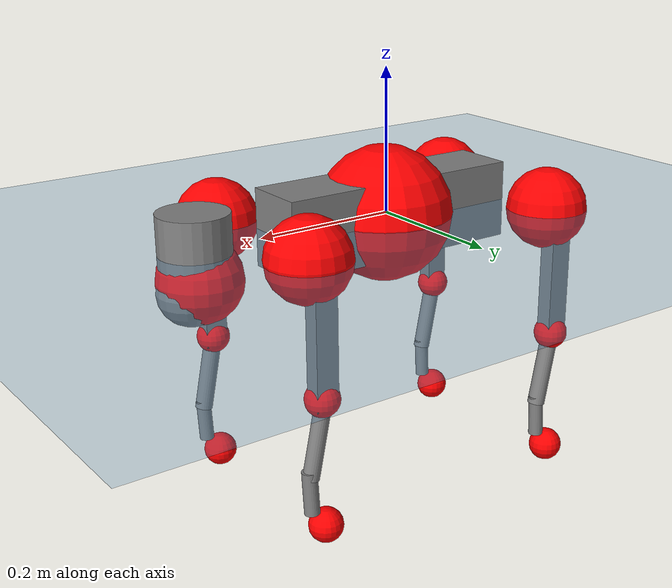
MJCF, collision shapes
<mujoco model="go2">
  <compiler angle="radian" assetdir="assets" balanceinertia="true" inertiafromgeom="false"/>

  <option timestep="0.005" density="1.2" viscosity="2e-05"/>

  <size nkey="1"/>

  <visual>
    <quality shadowsize="8192"/>
    <map shadowclip="0.5"/>
  </visual>

  <default>
    <default class="/">
      <geom contype="0" conaffinity="0" group="1" solref="-1000 -80"/>
      <site size="0.01 0.005 0.005" group="5"/>
      <general forcelimited="true" biastype="affine" gainprm="20" biasprm="0 -20 -0.5"/>
      <default class="go2">
        <joint armature="0.01" damping="0.01" frictionloss="0.2"/>
        <geom condim="1" margin="0.001"/>
        <default class="visual">
          <geom type="mesh" group="2"/>
        </default>
        <default class="collision">
          <geom group="3"/>
          <default class="foot">
            <geom size="0.022 0 0" condim="6" priority="1" friction="0.8 0.02 0.01" solimp="0.015 1 0.022"/>
          </default>
        </default>
        <default class="reward_collision_sphere">
          <geom group="5" rgba="1 0 0 1"/>
        </default>
      </default>
    </default>
  </default>

  <asset>
    <texture type="skybox" colorspace="auto" name="//unnamed_texture_0" builtin="gradient" rgb1="0.95 0.95 0.95" rgb2="0.95 0.95 0.95" width="100" height="600"/>
    <texture type="2d" colorspace="auto" name="texplane" builtin="checker" rgb1="0.345 0.575 0.748" rgb2="0.345 0.575 0.748" markrgb="1 1 1" width="512" height="512"/>
    <material name="MatPlane" class="/" texture="texplane" texuniform="true" texrepeat="2 2" specular="0.9"/>
    <material name="metal" class="/" rgba="0.9 0.95 0.95 1"/>
    <material name="black" class="/" rgba="0 0 0 1"/>
    <material name="white" class="/"/>
    <material name="gray" class="/" rgba="0.671705 0.692426 0.77427 1"/>
    <mesh name="base_0" class="/" file="base_0.obj"/>
    <mesh name="base_1" class="/" file="base_1.obj"/>
    <mesh name="base_2" class="/" file="base_2.obj"/>
    <mesh name="base_3" class="/" file="base_3.obj"/>
    <mesh name="base_4" class="/" file="base_4.obj"/>
    <mesh name="hip_0" class="/" file="hip_0.obj"/>
    <mesh name="hip_1" class="/" file="hip_1.obj"/>
    <mesh name="thigh_0" class="/" file="thigh_0.obj"/>
    <mesh name="thigh_1" class="/" file="thigh_1.obj"/>
    <mesh name="thigh_mirror_0" class="/" file="thigh_mirror_0.obj"/>
    <mesh name="thigh_mirror_1" class="/" file="thigh_mirror_1.obj"/>
    <mesh name="calf_0" class="/" file="calf_0.obj"/>
    <mesh name="calf_1" class="/" file="calf_1.obj"/>
    <mesh name="calf_mirror_0" class="/" file="calf_mirror_0.obj"/>
    <mesh name="calf_mirror_1" class="/" file="calf_mirror_1.obj"/>
    <mesh name="foot" class="/" file="foot.obj"/>
  </asset>

  <worldbody>
    <geom name="floor" class="/" size="100 100 0.125" type="plane" group="0" material="MatPlane"/>
    <light name="toplight_shadow" class="/" pos="0 0 5" dir="0.0990148 0.0990148 -0.990148" type="directional" ambient="0.04 0.04 0.04" diffuse="0.55 0.55 0.55" specular="0.12 0.12 0.12"/>
    <light name="toplight_fill" class="/" pos="0 0 5" dir="0.0990148 0.0990148 -0.990148" type="directional" castshadow="false" ambient="0.04 0.04 0.04" diffuse="0.3 0.3 0.3" specular="0.08 0.08 0.08"/>
    <body name="trunk" childclass="go2" pos="0.00247143 -0.000538035 0.000502313" quat="0.999999 -0.000134676 -0.00110098 -3.1693e-05">
      <inertial pos="0.019064 -0.000676887 -0.00493848" quat="-0.000721179 0.712172 -0.00158938 0.702003" mass="5.55404" diaginertia="0.11885 0.0783242 0.0103805"/>
      <joint name="//unnamed_joint_0" type="free" armature="0" damping="0" frictionloss="0"/>
      <geom name="//unnamed_geom_1" class="visual" material="black" mesh="base_0"/>
      <geom name="//unnamed_geom_2" class="visual" material="black" mesh="base_1"/>
      <geom name="//unnamed_geom_3" class="visual" material="black" mesh="base_2"/>
      <geom name="//unnamed_geom_4" class="visual" material="white" mesh="base_3"/>
      <geom name="//unnamed_geom_5" class="visual" material="gray" mesh="base_4"/>
      <geom name="trunk_1" class="collision" size="0.177396 0.0440895 0.0537562" type="box"/>
      <geom name="trunk_2" class="collision" size="0.0471546 0.0424391" pos="0.291789 0 0.00846757" type="cylinder"/>
      <geom name="trunk_3" class="collision" size="0.0443253" pos="0.29998 0 -0.0508054"/>
      <geom name="//unnamed_geom_9" class="reward_collision_sphere" size="0.0943092"/>
      <geom name="//unnamed_geom_10" class="reward_collision_sphere" size="0.0565855" pos="0.28667 0 -0.0381041"/>
      <site name="imu" pos="-0.0289142 -0.000339038 0.0463485" size="0.00943092"/>
      <camera name="track" pos="0 -1.91739 0" quat="0.707107 0.707107 0 0" mode="trackcom"/>
      <camera name="ego_camera" pos="0.319432 0 0.0381041" quat="-0.5 -0.5 0.5 0.5"/>
      <body name="FL_hip" pos="0.198102 0.045655 0.00142406" quat="1 -0.000128831 0.000121361 0.000389166">
        <inertial pos="-0.0063678 0.00111227 -0.000121731" quat="0.499042 0.498665 0.50444 0.497826" mass="0.567438" diaginertia="0.00101656 0.000477148 0.00020853"/>
        <joint name="FL_hip_joint" pos="0 0 0" axis="0.999889 -0.0145873 -0.00296574" range="-1.00072 1.04181" armature="0.00933564" damping="0.0063188" frictionloss="0.190883"/>
        <geom name="//unnamed_geom_11" class="visual" material="metal" mesh="hip_0"/>
        <geom name="//unnamed_geom_12" class="visual" material="gray" mesh="hip_1"/>
        <geom name="//unnamed_geom_13" class="collision" size="0.0433822 0.0188618" pos="0 0.0766958 0" quat="0.707107 0.707107 0 0" type="cylinder"/>
        <geom name="//unnamed_geom_14" class="reward_collision_sphere" size="0.0565855" pos="0 0.0671088 0"/>
        <body name="FL_thigh" pos="-0.00134391 0.0910042 0.00203966" quat="1 0.000667121 0.000337836 0.000247369">
          <inertial pos="-0.00313423 -0.0217865 -0.0296968" quat="0.829633 0.0843865 -0.0200671 0.55153" mass="0.947075" diaginertia="0.00656826 0.00469709 0.000389073"/>
          <joint name="FL_thigh_joint" pos="0 0 0" axis="0.000704956 0.99994 0.0109023" range="-1.57635 3.49482" armature="0.00978274" damping="0.00392978" frictionloss="0.198092"/>
          <geom name="//unnamed_geom_15" class="visual" material="metal" mesh="thigh_0"/>
          <geom name="//unnamed_geom_16" class="visual" material="gray" mesh="thigh_1"/>
          <geom name="//unnamed_geom_17" class="collision" size="0.100439 0.0115529 0.0160326" pos="0 0 -0.0901796" quat="0.707107 0 0.707107 0" type="box"/>
          <body name="FL_calf" pos="-0.000526738 -0.00272893 -0.179875" quat="1 8.24049e-05 -0.000104841 0.000104716">
            <inertial pos="0.0048899 -0.000550286 -0.118366" quat="0.71017 0.00459799 -0.00132421 0.704014" mass="0.202301" diaginertia="0.00172401 0.0012306 2.35497e-05"/>
            <joint name="FL_calf_joint" pos="0 0 0" axis="0.00437822 0.999985 0.00330983" stiffness="0.00437718" range="-2.76865 -0.827379" armature="0.00931234" damping="0" frictionloss="0.186976"/>
            <geom name="//unnamed_geom_18" class="visual" material="gray" mesh="calf_0"/>
            <geom name="//unnamed_geom_19" class="visual" material="black" mesh="calf_1"/>
            <geom name="FL_calf0" class="collision" size="0.0113171 0.0565855" pos="0.00819057 0 -0.0508054" quat="0.994493 0 -0.104807 0" type="cylinder"/>
            <geom name="//unnamed_geom_21" class="collision" size="0.010374 0.0306505" pos="0.0204764 0 -0.12532" quat="0.999688 0 0.0249974 0" type="cylinder"/>
            <geom name="//unnamed_geom_22" class="visual" pos="0 0 -0.180359" quat="1 0 0 0" material="black" mesh="foot"/>
            <geom name="FL_foot" class="foot" size="0.0182782" pos="-0.00204764 0 -0.180359"/>
            <geom name="//unnamed_geom_24" class="reward_collision_sphere" size="0.0235773"/>
            <geom name="//unnamed_geom_25" class="reward_collision_sphere" size="0.0235773" pos="-0.00204764 0 -0.180359"/>
            <site name="FL_foot" class="foot" pos="-0.00204764 0 -0.180359" size="0.00943092"/>
          </body>
        </body>
      </body>
      <body name="FR_hip" pos="0.198605 -0.0453593 -0.00192085" quat="1 -0.000161415 0.000412685 -0.000444362">
        <inertial pos="-0.00535486 -0.00378573 -0.000668577" quat="0.499348 0.504431 0.505141 0.490952" mass="0.56389" diaginertia="0.000978728 0.000482482 0.000207341"/>
        <joint name="FR_hip_joint" pos="0 0 0" axis="0.999993 -0.00308593 -0.00229271" stiffness="0.00523153" range="-1.07003 1.04685" armature="0.00898417" damping="0.018435" frictionloss="0.171802"/>
        <geom name="//unnamed_geom_26" class="visual" pos="0 9.75174e-10 4.18272e-08" quat="4.63268e-05 1 0 0" material="metal" mesh="hip_0"/>
        <geom name="//unnamed_geom_27" class="visual" pos="0 1.58087e-09 -1.03455e-07" quat="4.63268e-05 1 0 0" material="gray" mesh="hip_1"/>
        <geom name="//unnamed_geom_28" class="collision" size="0.0433822 0.0188618" pos="0 -0.0766958 0" quat="0.707107 0.707107 0 0" type="cylinder"/>
        <geom name="//unnamed_geom_29" class="reward_collision_sphere" size="0.0565855" pos="0 -0.0671088 0"/>
        <body name="FR_thigh" pos="0.00037365 -0.0940819 -0.00133929" quat="1 -0.000143082 0.000191452 0.000215017">
          <inertial pos="-0.00353762 0.0202078 -0.0280799" quat="0.549794 -0.0202459 0.0827797 0.830942" mass="0.976769" diaginertia="0.00668559 0.00481821 0.00039285"/>
          <joint name="FR_thigh_joint" pos="0 0 0" axis="7.82081e-05 -1 -0.0002646" range="-3.49385 1.59991" armature="0.00951724" damping="0.0163696" frictionloss="0.18265"/>
          <geom name="//unnamed_geom_30" class="visual" material="metal" mesh="thigh_mirror_0"/>
          <geom name="//unnamed_geom_31" class="visual" material="gray" mesh="thigh_mirror_1"/>
          <geom name="//unnamed_geom_32" class="collision" size="0.100439 0.0115529 0.0160326" pos="0 0 -0.0901796" quat="0.707107 0 0.707107 0" type="box"/>
          <body name="FR_calf" pos="-0.000727623 -0.00216566 -0.179335" quat="1 7.6743e-05 7.05439e-06 -1.19188e-05">
            <inertial pos="0.00638307 0.00121651 -0.120429" quat="0.699321 0.00255552 0.00608884 0.714777" mass="0.201716" diaginertia="0.0016792 0.00118474 2.2829e-05"/>
            <joint name="FR_calf_joint" pos="0 0 0" axis="0.01079 -0.999933 0.00430532" range="0.846859 2.74273" armature="0.00988978" damping="0.0194205" frictionloss="0.196607"/>
            <geom name="//unnamed_geom_33" class="visual" material="gray" mesh="calf_mirror_0"/>
            <geom name="//unnamed_geom_34" class="visual" material="black" mesh="calf_mirror_1"/>
            <geom name="FR_calf0" class="collision" size="0.0122602 0.0565855" pos="0.0102382 0 -0.0508054" quat="0.995004 0 -0.0998334 0" type="cylinder"/>
            <geom name="//unnamed_geom_36" class="collision" size="0.010374 0.0306505" pos="0.0204764 0 -0.12532" quat="0.999688 0 0.0249974 0" type="cylinder"/>
            <geom name="//unnamed_geom_37" class="visual" pos="0 0 -0.180359" quat="1 0 0 0" material="black" mesh="foot"/>
            <geom name="FR_foot" class="foot" size="0.0231144" pos="-0.00204764 0 -0.180359"/>
            <geom name="//unnamed_geom_39" class="reward_collision_sphere" size="0.0235773"/>
            <geom name="//unnamed_geom_40" class="reward_collision_sphere" size="0.0235773" pos="-0.00204764 0 -0.180359"/>
            <site name="FR_foot" class="foot" pos="-0.00204764 0 -0.180359" size="0.00943092"/>
          </body>
        </body>
      </body>
      <body name="RL_hip" pos="-0.198764 0.0452803 -0.00131196" quat="1 -0.00043083 -0.000112878 -0.000360028">
        <inertial pos="0.00458332 0.00457118 -0.000896975" quat="0.500807 0.506435 0.500746 0.491903" mass="0.58032" diaginertia="0.000993185 0.00047939 0.000212812"/>
        <joint name="RL_hip_joint" pos="0 0 0" axis="-0.999838 0.0171199 -0.00560975" stiffness="0.00494421" range="-1.05311 1.04025" armature="0.00870359" damping="0.0154086" frictionloss="0.20774"/>
        <geom name="//unnamed_geom_41" class="visual" pos="-1.54251e-09 0 -3.02368e-07" quat="4.63268e-05 0 1 0" material="metal" mesh="hip_0"/>
        <geom name="//unnamed_geom_42" class="visual" pos="-2.50059e-09 0 -2.68157e-07" quat="4.63268e-05 0 1 0" material="gray" mesh="hip_1"/>
        <geom name="//unnamed_geom_43" class="collision" size="0.0433822 0.0188618" pos="0 0.0766958 0" quat="0.707107 0.707107 0 0" type="cylinder"/>
        <geom name="//unnamed_geom_44" class="reward_collision_sphere" size="0.0565855" pos="0 0.0671088 0"/>
        <body name="RL_thigh" pos="-0.000198858 0.0889064 0.00165988" quat="1 0.000145805 -1.59593e-05 1.43737e-05">
          <inertial pos="-0.00362512 -0.0213353 -0.0281126" quat="0.827217 0.0835339 -0.0223166 0.55519" mass="0.98265" diaginertia="0.00663675 0.00466245 0.000380898"/>
          <joint name="RL_thigh_joint" pos="0 0 0" axis="0.00372036 0.999986 0.00383225" stiffness="0.00725895" range="-0.514254 4.53983" armature="0.00999947" damping="0.00922328" frictionloss="0.189793"/>
          <geom name="//unnamed_geom_45" class="visual" material="metal" mesh="thigh_0"/>
          <geom name="//unnamed_geom_46" class="visual" material="gray" mesh="thigh_1"/>
          <geom name="//unnamed_geom_47" class="collision" size="0.100439 0.0115529 0.0160326" pos="0 0 -0.0901796" quat="0.707107 0 0.707107 0" type="box"/>
          <body name="RL_calf" pos="-0.00015085 -0.000985761 -0.182757" quat="1 -7.64205e-05 -0.000219905 -0.000109893">
            <inertial pos="0.00741601 0.00198884 -0.119175" quat="0.71056 0.000677079 -0.00465576 0.703621" mass="0.19966" diaginertia="0.00165602 0.00117671 2.21389e-05"/>
            <joint name="RL_calf_joint" pos="0 0 0" axis="0.00043934 0.999997 -0.00254116" range="-2.7184 -0.847766" armature="0.00944464" damping="0.00255211" frictionloss="0.211139"/>
            <geom name="//unnamed_geom_48" class="visual" material="gray" mesh="calf_0"/>
            <geom name="//unnamed_geom_49" class="visual" material="black" mesh="calf_1"/>
            <geom name="RL_calf0" class="collision" size="0.0122602 0.0565855" pos="0.0102382 0 -0.0508054" quat="0.995004 0 -0.0998334 0" type="cylinder"/>
            <geom name="//unnamed_geom_51" class="collision" size="0.010374 0.0306505" pos="0.0204764 0 -0.12532" quat="0.999688 0 0.0249974 0" type="cylinder"/>
            <geom name="//unnamed_geom_52" class="visual" pos="0 0 -0.180359" quat="1 0 0 0" material="black" mesh="foot"/>
            <geom name="RL_foot" class="foot" size="0.017504" pos="-0.00204764 0 -0.180359"/>
            <geom name="//unnamed_geom_54" class="reward_collision_sphere" size="0.0235773"/>
            <geom name="//unnamed_geom_55" class="reward_collision_sphere" size="0.0235773" pos="-0.00204764 0 -0.180359"/>
            <site name="RL_foot" class="foot" pos="-0.00204764 0 -0.180359" size="0.00943092"/>
          </body>
        </body>
      </body>
      <body name="RR_hip" pos="-0.19898 -0.0447043 -0.000173348" quat="0.999999 -0.000933815 7.83636e-05 0.000567756">
        <inertial pos="0.00778596 -0.000630962 -0.00243437" quat="0.497038 0.496337 0.497302 0.509208" mass="0.569861" diaginertia="0.00100064 0.000483403 0.00020812"/>
        <joint name="RR_hip_joint" pos="0 0 0" axis="-0.999914 0.00831498 0.0101648" stiffness="0.000158526" range="-1.06523 1.04482" armature="0.00965812" damping="0.0136578" frictionloss="0.185157"/>
        <geom name="//unnamed_geom_56" class="visual" pos="1.54026e-09 9.75174e-10 -3.44195e-07" quat="2.14617e-09 4.63268e-05 4.63268e-05 -1" material="metal" mesh="hip_0"/>
        <geom name="//unnamed_geom_57" class="visual" pos="2.50617e-09 1.58087e-09 -1.64702e-07" quat="2.14617e-09 4.63268e-05 4.63268e-05 -1" material="gray" mesh="hip_1"/>
        <geom name="//unnamed_geom_58" class="collision" size="0.0433822 0.0188618" pos="0 -0.0766958 0" quat="0.707107 0.707107 0 0" type="cylinder"/>
        <geom name="//unnamed_geom_59" class="reward_collision_sphere" size="0.0565855" pos="0 -0.0671088 0"/>
        <body name="RR_thigh" pos="0.000659371 -0.0912883 -0.00279634" quat="1 5.93143e-05 -0.000149796 0.000247808">
          <inertial pos="-0.00367401 0.0212694 -0.0277833" quat="0.551609 -0.0214208 0.0857205 0.82941" mass="0.94396" diaginertia="0.0067066 0.00476611 0.000383297"/>
          <joint name="RR_thigh_joint" pos="0 0 0" axis="0.00924234 -0.999912 -0.00946748" range="-4.53582 0.562112" armature="0.00921632" damping="0.0123203" frictionloss="0.184673"/>
          <geom name="//unnamed_geom_60" class="visual" material="metal" mesh="thigh_mirror_0"/>
          <geom name="//unnamed_geom_61" class="visual" material="gray" mesh="thigh_mirror_1"/>
          <geom name="//unnamed_geom_62" class="collision" size="0.100439 0.0115529 0.0160326" pos="0 0 -0.0901796" quat="0.707107 0 0.707107 0" type="box"/>
          <body name="RR_calf" pos="-0.000907543 0.000811429 -0.181228" quat="1 -0.000180042 1.51742e-05 -5.69022e-05">
            <inertial pos="0.00516729 0.000732045 -0.119735" quat="0.703245 -0.00452613 0.00174976 0.710931" mass="0.200532" diaginertia="0.00165208 0.00118054 2.35382e-05"/>
            <joint name="RR_calf_joint" pos="0 0 0" axis="-0.0048181 -0.999859 0.0160563" range="0.856418 2.73015" armature="0.00991209" damping="0.0204072" frictionloss="0.197874"/>
            <geom name="//unnamed_geom_63" class="visual" material="gray" mesh="calf_mirror_0"/>
            <geom name="//unnamed_geom_64" class="visual" material="black" mesh="calf_mirror_1"/>
            <geom name="RR_calf0" class="collision" size="0.0122602 0.0565855" pos="0.0102382 0 -0.0508054" quat="0.995004 0 -0.0998334 0" type="cylinder"/>
            <geom name="//unnamed_geom_66" class="collision" size="0.010374 0.0306505" pos="0.0204764 0 -0.12532" quat="0.999688 0 0.0249974 0" type="cylinder"/>
            <geom name="//unnamed_geom_67" class="visual" pos="0 0 -0.180359" quat="1 0 0 0" material="black" mesh="foot"/>
            <geom name="RR_foot" class="foot" size="0.0218041" pos="-0.00204764 0 -0.180359"/>
            <geom name="//unnamed_geom_69" class="reward_collision_sphere" size="0.0235773"/>
            <geom name="//unnamed_geom_70" class="reward_collision_sphere" size="0.0235773" pos="-0.00204764 0 -0.180359"/>
            <site name="RR_foot" class="foot" pos="-0.00204764 0 -0.180359" size="0.00943092"/>
          </body>
        </body>
      </body>
    </body>
  </worldbody>

  <contact>
    <pair class="/" geom1="floor" geom2="FL_foot" name="//unnamed_contact_0"/>
    <pair class="/" geom1="floor" geom2="FR_foot" name="//unnamed_contact_1"/>
    <pair class="/" geom1="floor" geom2="RL_foot" name="//unnamed_contact_2"/>
    <pair class="/" geom1="floor" geom2="RR_foot" name="//unnamed_contact_3"/>
  </contact>

  <actuator>
    <general name="FL_hip" class="/" joint="FL_hip_joint" forcerange="-22.4126 22.4126" gainprm="19.0507" biasprm="0 -19.0507 -0.458557"/>
    <general name="FL_thigh" class="/" joint="FL_thigh_joint" forcerange="-22.5165 22.5165" gainprm="19.0507" biasprm="0 -19.0507 -0.458557"/>
    <general name="FL_calf" class="/" joint="FL_calf_joint" forcerange="-42.5458 42.5458" gainprm="19.0507" biasprm="0 -19.0507 -0.458557"/>
    <general name="FR_hip" class="/" joint="FR_hip_joint" forcerange="-22.2127 22.2127" gainprm="19.0507" biasprm="0 -19.0507 -0.458557"/>
    <general name="FR_thigh" class="/" joint="FR_thigh_joint" forcerange="-22.216 22.216" gainprm="19.0507" biasprm="0 -19.0507 -0.458557"/>
    <general name="FR_calf" class="/" joint="FR_calf_joint" forcerange="-43.0572 43.0572" gainprm="19.0507" biasprm="0 -19.0507 -0.458557"/>
    <general name="RL_hip" class="/" joint="RL_hip_joint" forcerange="-24.3116 24.3116" gainprm="19.0507" biasprm="0 -19.0507 -0.458557"/>
    <general name="RL_thigh" class="/" joint="RL_thigh_joint" forcerange="-22.8109 22.8109" gainprm="19.0507" biasprm="0 -19.0507 -0.458557"/>
    <general name="RL_calf" class="/" joint="RL_calf_joint" forcerange="-39.1994 39.1994" gainprm="19.0507" biasprm="0 -19.0507 -0.458557"/>
    <general name="RR_hip" class="/" joint="RR_hip_joint" forcerange="-21.6772 21.6772" gainprm="19.0507" biasprm="0 -19.0507 -0.458557"/>
    <general name="RR_thigh" class="/" joint="RR_thigh_joint" forcerange="-24.2127 24.2127" gainprm="19.0507" biasprm="0 -19.0507 -0.458557"/>
    <general name="RR_calf" class="/" joint="RR_calf_joint" forcerange="-41.8799 41.8799" gainprm="19.0507" biasprm="0 -19.0507 -0.458557"/>
  </actuator>

  <sensor>
    <gyro site="imu" name="imu_angular_velocity"/>
    <velocimeter site="imu" name="imu_linear_velocity"/>
    <framelinvel objtype="site" objname="FL_foot" name="FL_foot_global_linear_velocity"/>
    <framelinvel objtype="site" objname="FR_foot" name="FR_foot_global_linear_velocity"/>
    <framelinvel objtype="site" objname="RL_foot" name="RL_foot_global_linear_velocity"/>
    <framelinvel objtype="site" objname="RR_foot" name="RR_foot_global_linear_velocity"/>
  </sensor>

  <keyframe>
    <key name="home" qpos="0 0 0.325 1 0 0 0 0.1 0.8 -1.5 -0.1 -0.8 1.5 -0.1 0.8 -1.5 0.1 -0.8 1.5"/>
  </keyframe>
</mujoco>
